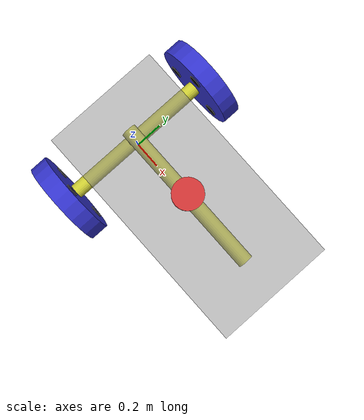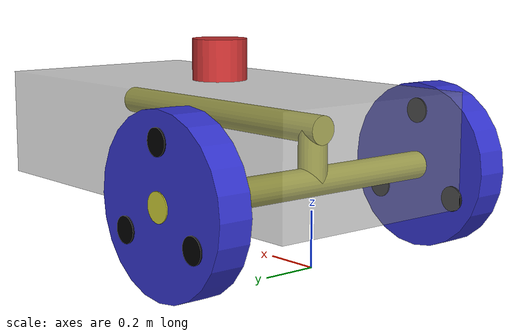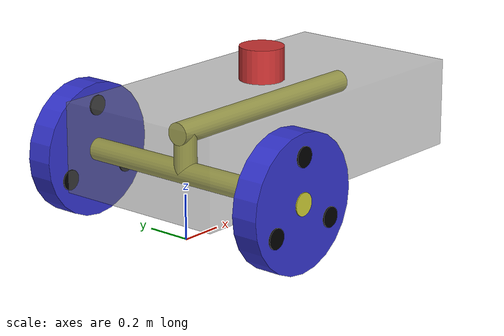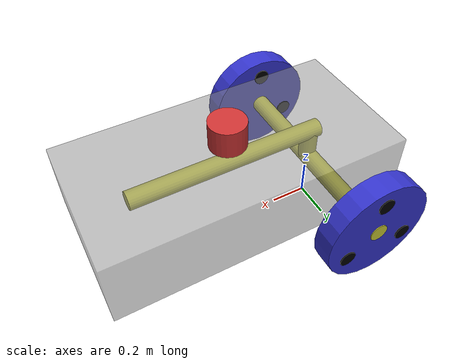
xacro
<?xml version="1.0"?>
<robot name="diff_robot" xmlns:xacro="http://ros.org/wiki/xacro">
    <material name="gray">
        <color rgba="0.5 0.5 0.5 0.5"/>
    </material>
    <material name="red">
        <color rgba="0.8 0.2 0.2 1.0"/>
    </material>
    <material name="green">
        <color rgba="0.2 0.8 0.2 1.0"/>
    </material>
    <material name="blue">
        <color rgba="0.2 0.2 0.8 1.0"/>
    </material>
    <material name="yellow">
        <color rgba="0.8 0.8 0.2 1.0"/>
    </material>
    <material name="black">
        <color rgba="0.0 0.0 0.0 1.0"/>
    </material>

    <!-- 円周率 -->
    <xacro:property name="PI" value="3.1415926535897932384626433832795028841971" />

    <!-- 車両のパラメータ -->
    <xacro:property name="Lv" value="1.0" /> <!-- 車軸間距離 -->
    <xacro:property name="vehicle_body_length" value="${Lv * 1.6}" />
    <xacro:property name="vehicle_body_width" value="${Lv * 0.8}" />
    <xacro:property name="vehicle_body_height" value="${Lv * 0.4}" />
    <xacro:property name="center_of_vehicle_body_z" value="${vehicle_body_height}" />
    <xacro:property name="axel_half_length" value="${vehicle_body_width * 0.8}" /> <!-- 車軸半長 -->
    <xacro:property name="axel_length" value="${axel_half_length * 2.0}" /> <!-- 車軸長 -->
    <xacro:property name="axel_radius" value="0.05" /> <!-- 車軸半径 -->
    <xacro:property name="axel_to_axel_half_length" value="${Lv * 0.5}" /> <!-- 車軸間半長 -->
    <xacro:property name="axel_to_axel_z" value="${vehicle_body_height * 1.2}" /> <!-- 車軸と車軸をつなぐ棒の高さ -->
    <xacro:property name="steering_length" value="${axel_to_axel_z - wheel_radius}" /> <!-- ステアリングの高さ -->
    <!-- 車輪のパラメータ -->
    <xacro:property name="wheel_radius" value="${Lv * 0.3}" />  <!-- 車輪半径 -->
    <xacro:property name="wheel_width" value="${wheel_radius * 0.4}" />  <!-- 車輪幅 -->
    <xacro:property name="wheel_separation_half_length" value="${axel_half_length*0.9}" />  <!-- 車輪間半長 -->
    <!-- 車輪の回転がわかるようにするための棒のパラメータと、n番目の棒の車輪中心からの相対位置(x,y) -->
    <xacro:property name="wheel_visual_cylinder_radius" value="${wheel_radius * 0.15}" />
    <xacro:property name="wheel_visual_cylinder_length" value="${wheel_width * 1.1}" />
    <xacro:property name="wheel_1st_visual_cylinder_x" value="${(wheel_radius * 2.0 / 3.0) * cos(PI / 6.0)}" />
    <xacro:property name="wheel_1st_visual_cylinder_y" value="${(wheel_radius * 2.0 / 3.0) * sin(PI / 6.0)}" />
    <xacro:property name="wheel_2nd_visual_cylinder_x" value="${(wheel_radius * 2.0 / 3.0) * cos(5.0 * PI / 6.0)}" />
    <xacro:property name="wheel_2nd_visual_cylinder_y" value="${(wheel_radius * 2.0 / 3.0) * sin(5.0 * PI / 6.0)}" />
    <xacro:property name="wheel_3rd_visual_cylinder_x" value="${(wheel_radius * 2.0 / 3.0) * cos(9.0 * PI / 6.0)}" />
    <xacro:property name="wheel_3rd_visual_cylinder_y" value="${(wheel_radius * 2.0 / 3.0) * sin(9.0 * PI / 6.0)}" />

    <!-- リンクの質量設定 -->
    <xacro:property name="vehicle_body_mass" value="1.0" />
    <xacro:property name="vehicle_axle_to_axel_mass" value="1.0" />
    <xacro:property name="vehicle_steering_mass" value="1.0" />
    <xacro:property name="vehicle_axel_mass" value="1.0" />
    <xacro:property name="vehicle_wheel_mass" value="1.0" />
    <xacro:property name="vehicle_wheel_visual_cylinder_mass" value="1.0" />

    <!-- リンクのイナーシャの設定 -->
    <xacro:property name="I_vehicle_body_xx" value="${vehicle_body_mass*(vehicle_body_height*vehicle_body_height + vehicle_body_length*vehicle_body_length) / 12}" />
    <xacro:property name="I_vehicle_body_yy" value="${vehicle_body_mass*(vehicle_body_width*vehicle_body_width + vehicle_body_height*vehicle_body_height) / 12}" />
    <xacro:property name="I_vehicle_body_zz" value="${vehicle_body_mass*(vehicle_body_width*vehicle_body_width + vehicle_body_length*vehicle_body_length) / 12}" />
    <xacro:property name="I_axel_to_axel_xx" value="${vehicle_axle_to_axel_mass*Lv*Lv / 12}" />
    <xacro:property name="I_axel_to_axel_yy" value="0.0" />
    <xacro:property name="I_axel_to_axel_zz" value="${vehicle_axle_to_axel_mass*Lv*Lv / 12}" />
    <xacro:property name="I_steering_xx" value="${vehicle_steering_mass*(3*axel_radius*axel_radius + steering_length*steering_length) / 12}" />
    <xacro:property name="I_steering_yy" value="${vehicle_steering_mass*(3*axel_radius*axel_radius + steering_length*steering_length) / 12}" />
    <xacro:property name="I_steering_zz" value="${vehicle_steering_mass*axel_radius*axel_radius / 2}" />
    <xacro:property name="I_axel_xx" value="${vehicle_axel_mass*axel_length*axel_length / 12}" />
    <xacro:property name="I_axel_yy" value="0.0" />
    <xacro:property name="I_axel_zz" value="${vehicle_axel_mass*axel_length*axel_length / 12}" />
    <xacro:property name="I_wheel_xx" value="${vehicle_wheel_mass*(3*wheel_radius*wheel_radius + wheel_width*wheel_width) / 12}" />
    <xacro:property name="I_wheel_yy" value="${vehicle_wheel_mass*(3*wheel_radius*wheel_radius + wheel_width*wheel_width) / 12}" />
    <xacro:property name="I_wheel_zz" value="${vehicle_wheel_mass*wheel_radius*wheel_radius / 2}" />
    <xacro:property name="I_wheel_visual_cylinder_xx" value="${vehicle_wheel_visual_cylinder_mass*(3*wheel_visual_cylinder_radius*wheel_visual_cylinder_radius + wheel_visual_cylinder_length*wheel_visual_cylinder_length) / 12}" />
    <xacro:property name="I_wheel_visual_cylinder_yy" value="${vehicle_wheel_visual_cylinder_mass*(3*wheel_visual_cylinder_radius*wheel_visual_cylinder_radius + wheel_visual_cylinder_length*wheel_visual_cylinder_length) / 12}" />
    <xacro:property name="I_wheel_visual_cylinder_zz" value="${vehicle_wheel_visual_cylinder_mass*wheel_visual_cylinder_radius*wheel_visual_cylinder_radius / 2}" />

    <!-- 摩擦力 -->
    <xacro:property name="mu_1" value="0.5" />
    <xacro:property name="mu_2" value="0.5" />

    <!-- 車輪の回転がわかるように埋め込む黒棒のマクロ -->
    <xacro:macro name="wheel_visual_cylinder_macro" params="front_or_rear right_or_left nth_cylinder">
        <joint name="${front_or_rear}_${right_or_left}_${nth_cylinder}_joint" type="fixed">
            <xacro:if value="${nth_cylinder=='first'}">
                <origin xyz="${wheel_1st_visual_cylinder_x} ${wheel_1st_visual_cylinder_y} 0" rpy="0 0 0"/>
            </xacro:if>
            <xacro:if value="${nth_cylinder=='second'}">
                <origin xyz="${wheel_2nd_visual_cylinder_x} ${wheel_2nd_visual_cylinder_y} 0" rpy="0 0 0"/>
            </xacro:if>
            <xacro:if value="${nth_cylinder=='third'}">
                <origin xyz="${wheel_3rd_visual_cylinder_x} ${wheel_3rd_visual_cylinder_y} 0" rpy="0 0 0"/>
            </xacro:if>
            <parent link="${front_or_rear}_${right_or_left}_link"/>
            <child  link="${front_or_rear}_${right_or_left}_${nth_cylinder}_link"/>
        </joint>
        <link name="${front_or_rear}_${right_or_left}_${nth_cylinder}_link">
            <inertial>
                <origin xyz="0 0 0" rpy="0 0 0"/>
                <mass value="${vehicle_wheel_visual_cylinder_mass}"/>
                <inertia ixx="${I_wheel_visual_cylinder_xx}" ixy="0.0" ixz="0.0" iyy="${I_wheel_visual_cylinder_yy}" iyz="0.0" izz="${I_wheel_visual_cylinder_zz}"/>
            </inertial>
            <visual>
                <geometry>
                <cylinder radius="${wheel_visual_cylinder_radius}" length="${wheel_visual_cylinder_length}" />
                </geometry>
                <material name="black"/>
            </visual>
            <collision>
                <geometry>
                <cylinder radius="${wheel_visual_cylinder_radius}" length="${wheel_visual_cylinder_length}" />
                </geometry>
            </collision>
        </link>
        <gazebo reference="${front_or_rear}_${right_or_left}_${nth_cylinder}_link">
            <material>Gazebo/Black</material>
        </gazebo>
    </xacro:macro>

    <!-- 車輪のマクロ -->
    <xacro:macro name="wheel_macro" params="parent front_or_rear right_or_left xyz color gazebo_color">
        <joint name="${front_or_rear}_${right_or_left}_joint" type="continuous">
            <origin xyz="${xyz}" rpy="0 0 0"/>
            <parent link="${parent}"/>
            <child  link="${front_or_rear}_${right_or_left}_link"/>
            <axis xyz="0 0 1" />
        </joint>
        <link name="${front_or_rear}_${right_or_left}_link">
            <inertial>
                <origin xyz="0 0 0" rpy="0 0 0"/>
                <mass value="${vehicle_wheel_mass}"/>
                <inertia ixx="${I_wheel_xx}" ixy="0.0" ixz="0.0" iyy="${I_wheel_yy}" iyz="0.0" izz="${I_wheel_zz}"/>
            </inertial>
            <visual>
                <geometry>
                    <cylinder radius="${wheel_radius}" length="${wheel_width}" />
                </geometry>
                <material name="${color}"/>
            </visual>
            <collision>
                <geometry>
                    <cylinder radius="${wheel_radius}" length="${wheel_width}" />
                </geometry>
            </collision>
        </link>
        <!-- 回転がわかるように3つの黒棒を埋め込む -->
        <xacro:wheel_visual_cylinder_macro front_or_rear="${front_or_rear}" right_or_left="${right_or_left}" nth_cylinder="first"/>
        <xacro:wheel_visual_cylinder_macro front_or_rear="${front_or_rear}" right_or_left="${right_or_left}" nth_cylinder="second"/>
        <xacro:wheel_visual_cylinder_macro front_or_rear="${front_or_rear}" right_or_left="${right_or_left}" nth_cylinder="third"/>

        <gazebo reference="${front_or_rear}_${right_or_left}_link">
            <material>Gazebo/${gazebo_color}</material>
            <mu1 value="${mu_1}" />
            <mu2 value="${mu_2}" />
            <kp value="500000" />
            <kd value="10" />
        </gazebo>
    </xacro:macro>

    <!-- LiDARセンサのマクロ -->
    <xacro:macro name="laser_macro" params="parent prefix xyz">
        <joint name="${prefix}_joint" type="fixed">
            <parent link="${parent}"/>
            <child  link="${prefix}_link"/>
            <origin xyz="${xyz}" rpy="0 0 0"/>
        </joint>
        <link name="${prefix}_link">
            <inertial>
                <mass value="1e-5" />
                <origin xyz="0 0 0" rpy="0 0 0" />
                <inertia ixx="1e-6" ixy="0" ixz="0" iyy="1e-6" iyz="0" izz="1e-6" />
            </inertial>
            <visual>
                <origin xyz="0 0 0" rpy="0 0 0" />
                <geometry>
                    <cylinder radius="0.1" length="0.15" />
                </geometry>
                <material name="red" />
            </visual>
            <collision>
                <origin xyz="0 0 0" rpy="0 0 0"/>
                <geometry>
                    <cylinder radius="0.1" length="0.15" />
                </geometry>
            </collision>
        </link>
        <gazebo reference="${prefix}_link">
            <material>Gazebo/Red</material>
            <sensor type="gpu_ray" name="${prefix}">
                <pose>0 0 0 0 0 0</pose>
                <visualize>true</visualize>
                <update_rate>1</update_rate>
                <ray>
                    <scan>
                        <horizontal>
                            <samples>400</samples>
                            <resolution>1</resolution>
                            <min_angle>${-PI / 2}</min_angle>
                            <max_angle>${PI / 2}</max_angle>
                        </horizontal>
                    </scan>
                    <range>
                        <min>0.10</min>
                        <max>30.0</max>
                        <resolution>0.01</resolution>
                    </range>
                    <noise>
                        <type>gaussian</type>
                        <mean>0.0</mean>
                        <stddev>0.01</stddev>
                    </noise>
                </ray>
                <plugin name="gazebo_ros_lidar_controller" filename="libgazebo_ros_gpu_laser.so">
                    <topicName>/${prefix}_link/scan</topicName>
                    <frameName>${prefix}_link</frameName>
                </plugin>
            </sensor>
        </gazebo>
    </xacro:macro>

    <!-- 本体 -->
    <link name="base_link"/>

    <!-- 胴体 -->
    <joint name="body_joint" type="fixed">
        <parent link="base_link"/>
        <child  link="body_link"/>
        <origin xyz="${axel_to_axel_half_length} 0 ${center_of_vehicle_body_z}" rpy="0 0 0"/>
    </joint>
    <link name="body_link">
        <inertial>
            <origin xyz="0 0 0" rpy="0 0 0"/>
            <mass value="${vehicle_body_mass}"/>
            <inertia ixx="${I_vehicle_body_xx}" ixy="0.0" ixz="0.0" iyy="${I_vehicle_body_yy}" iyz="0.0" izz="${I_vehicle_body_zz}"/>
        </inertial>
        <visual>
            <origin xyz="0 0 0" rpy="0 0 0" />
            <geometry>
                <box size="${vehicle_body_length} ${vehicle_body_width} ${vehicle_body_height}" />
            </geometry>
            <material name="gray" />
        </visual>
        <collision>
            <origin xyz="0 0 0" rpy="0 0 0" />
            <geometry>
                <box size="${vehicle_body_length} ${vehicle_body_width} ${vehicle_body_height}" />
            </geometry>
        </collision>
    </link>
    <gazebo reference="body_link">
        <material>Gazebo/Gray</material>
    </gazebo>

    <!-- LiDARセンサ -->
    <xacro:laser_macro prefix="lidar" parent="body_link" xyz="0 0 0.28"/>

    <!-- 前輪の車軸と後輪の車軸をつなぐ棒 -->
    <joint name="axle_to_axle_joint" type="fixed">
        <origin xyz="0 0 ${-center_of_vehicle_body_z + axel_to_axel_z}" rpy="0 ${radians(90)} 0"/>
        <parent link="body_link"/>
        <child  link="axel_to_axle_link"/>
    </joint>
    <link name="axel_to_axle_link">
        <inertial>
            <origin xyz="0 0 0" rpy="0 0 0"/>
            <mass value="${vehicle_axle_to_axel_mass}"/>
            <inertia ixx="${I_axel_to_axel_xx}" ixy="0.0" ixz="0.0" iyy="${I_axel_to_axel_yy}" iyz="0.0" izz="${I_axel_to_axel_zz}"/>
        </inertial>
        <visual>
        <origin xyz="0 0 0" rpy="0 0 0" />
            <geometry>
                <cylinder radius="${axel_radius}" length="${(axel_to_axel_half_length+axel_radius)*2}" />
            </geometry>
            <material name="yellow" />
        </visual>
        <collision>
        <origin xyz="0 0 0" rpy="0 0 0" />
            <geometry>
                <cylinder radius="${axel_radius}" length="${(axel_to_axel_half_length+axel_radius)*2}" />
            </geometry>
        </collision>
    </link>
    <gazebo reference="axel_to_axle_link">
        <material>Gazebo/Yellow</material>
    </gazebo>

    <!-- (前輪の車軸と後輪の車軸をつなぐ棒)と(後輪の車軸)をつなぐ縦棒 -->
    <joint name="rear_steering_joint" type="fixed">
        <origin xyz="0 0 ${-axel_to_axel_half_length}" rpy="0 ${radians(-90)} 0"/>
        <parent link="axel_to_axle_link"/>
        <child  link="rear_steering_link"/>
    </joint>
    <link name="rear_steering_link">
        <inertial>
            <origin xyz="0 0 ${-(steering_length)*0.5}" rpy="0 0 0"/>
            <mass value="${vehicle_steering_mass}"/>
            <inertia ixx="${I_steering_xx}" ixy="0.0" ixz="0.0" iyy="${I_steering_yy}" iyz="0.0" izz="${I_steering_zz}"/>
        </inertial>
        <visual>
        <origin xyz="0 0 ${-(axel_to_axel_z - wheel_radius)*0.5}" rpy="0 0 0" />
            <geometry>
                <cylinder radius="${axel_radius}" length="${axel_to_axel_z - wheel_radius}" />
            </geometry>
            <material name="yellow" />
        </visual>
        <collision>
        <origin xyz="0 0 ${-(axel_to_axel_z - wheel_radius)*0.5}" rpy="0 0 0" />
            <geometry>
                <cylinder radius="${axel_radius}" length="${axel_to_axel_z - wheel_radius}" />
            </geometry>
        </collision>
    </link>
    <gazebo reference="rear_steering_link">
        <material>Gazebo/Yellow</material>
    </gazebo>

    <!-- 後輪の車軸-->
    <joint name="rear_wheel_axle_joint" type="fixed">
        <origin xyz="0 0 ${-(axel_to_axel_z - wheel_radius)}" rpy="${radians(-90)} 0 0"/>
        <parent link="rear_steering_link"/>
        <child  link="rear_wheel_axle_link"/>
    </joint>
    <link name="rear_wheel_axle_link">
        <inertial>
            <origin xyz="0 0 0" rpy="0 0 0"/>
            <mass value="${vehicle_axel_mass}"/>
            <inertia ixx="${I_axel_xx}" ixy="0.0" ixz="0.0" iyy="${I_axel_yy}" iyz="0.0" izz="${I_axel_zz}"/>
        </inertial>
        <visual>
        <origin xyz="0 0 0" rpy="0 0 0" />
            <geometry>
                <cylinder radius="${axel_radius}" length="${axel_half_length*2}" />
            </geometry>
            <material name="yellow" />
        </visual>
        <collision>
        <origin xyz="0 0 0" rpy="0 0 0" />
            <geometry>
                <cylinder radius="${axel_radius}" length="${axel_half_length*2}" />
            </geometry>
        </collision>
    </link>
    <gazebo reference="rear_wheel_axle_link">
        <material>Gazebo/Yellow</material>
    </gazebo>

    <!-- 後輪 -->
    <xacro:wheel_macro front_or_rear="rear" right_or_left="right" parent="rear_wheel_axle_link" xyz="0 0 ${-wheel_separation_half_length}" color="blue" gazebo_color="Blue"/>
    <xacro:wheel_macro front_or_rear="rear" right_or_left="left" parent="rear_wheel_axle_link" xyz="0 0 ${wheel_separation_half_length}" color="blue" gazebo_color="Blue"/>

    <!-- 車体を支えるためのボール -->
    <joint name="ball_joint" type="fixed">
      <parent link="base_link"/>
      <child  link="ball_link"/>
      <origin xyz="${axel_to_axel_half_length * 2} 0 ${(center_of_vehicle_body_z - (vehicle_body_height * 0.5)) * 0.5}" rpy="0 0 0"/>
    </joint>
    <link name="ball_link">
      <visual>
        <origin xyz="0 0 0" rpy="0 0 0" />
        <geometry>
          <sphere radius="${(center_of_vehicle_body_z - (vehicle_body_height * 0.5)) * 0.5}" />
        </geometry>
        <material name="gray" />
      </visual>
      <collision>
        <origin xyz="0 0 0" rpy="0 0 0" />
        <geometry>
          <sphere radius="${(center_of_vehicle_body_z - (vehicle_body_height * 0.5)) * 0.5}" />
        </geometry>
        <material name="gray" />
      </collision>
    </link>
    <gazebo reference="ball_link">
      <material>Gazebo/Gray</material>
      <mu1 value="0.0" />
      <mu2 value="0.0" />
    </gazebo>

    <!-- トランスミッション -->
    <!-- 後輪右車輪のトランスミッション(差動二輪のためVelocity入力Effort出力) -->
    <transmission name="rear_right_trans" type="SimpleTransmission">
        <type>transmission_interface/SimpleTransmission</type>
        <joint name="rear_right_joint">
            <hardwareInterface>hardware_interface/VelocityJointInterface</hardwareInterface>
        </joint>
        <actuator name="rear_right_motor">
            <mechanicalReduction>1</mechanicalReduction>
        </actuator>
    </transmission>
    <!-- 後輪左車輪のトランスミッション(差動二輪のためVelocity入力Effort出力) -->
    <transmission name="rear_left_trans" type="SimpleTransmission">
        <type>transmission_interface/SimpleTransmission</type>
        <joint name="rear_left_joint">
            <hardwareInterface>hardware_interface/VelocityJointInterface</hardwareInterface>
        </joint>
        <actuator name="rear_left_motor">
            <mechanicalReduction>1</mechanicalReduction>
        </actuator>
    </transmission>

    <!-- Gazeboプラグインの設定 -->
    <gazebo>
        <plugin name="gazebo_ros_control" filename="libgazebo_ros_control.so">
            <robotNamespace>/diff_robot</robotNamespace>
            <robotSimType>gazebo_ros_control/DefaultRobotHWSim</robotSimType>
            <legacyModeNS>true</legacyModeNS>
        </plugin>
    </gazebo>
</robot>
